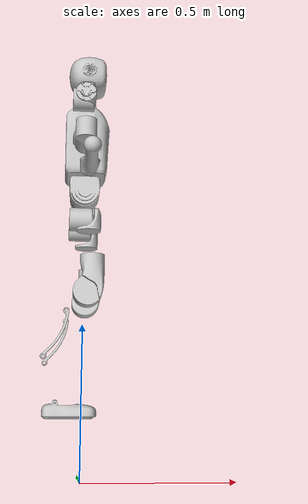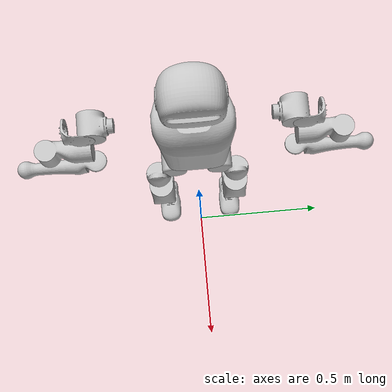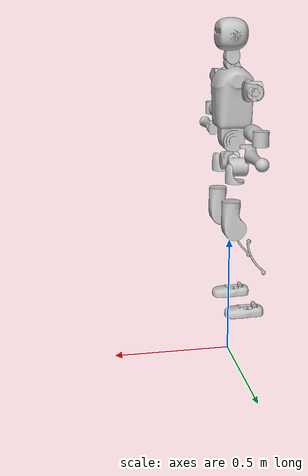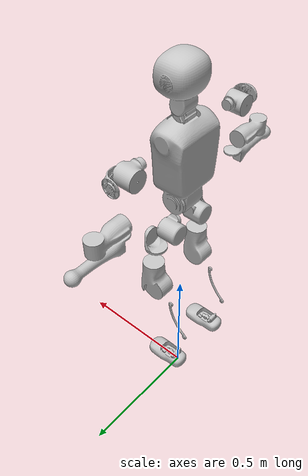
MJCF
<!--Ai generated-->
<mujoco model="k1_mocap">
  <compiler angle="radian" meshdir="meshes"/>

  <default>
    <motor ctrlrange="-1 1" ctrllimited="true"/>
    <joint actuatorfrclimited="true" type="hinge"/>
  </default>

  <asset>
    <mesh name="Trunk" file="Trunk.STL"/>
    <mesh name="Head_1" file="Head_1.STL"/>
    <mesh name="Head_2" file="Head_2.STL"/>
    <mesh name="Left_Arm_1" file="Left_Arm_1.STL"/>
    <mesh name="Left_Arm_2" file="Left_Arm_2.STL"/>
    <mesh name="Left_Arm_3" file="Left_Arm_3.STL"/>
    <mesh name="Left_Arm_4" file="Left_Arm_4.STL"/>
    <mesh name="Right_Arm_1" file="Right_Arm_1.STL"/>
    <mesh name="Right_Arm_2" file="Right_Arm_2.STL"/>
    <mesh name="Right_Arm_3" file="Right_Arm_3.STL"/>
    <mesh name="Right_Arm_4" file="Right_Arm_4.STL"/>
    <mesh name="Left_Hip_Pitch" file="Left_Hip_Pitch.STL"/>
    <mesh name="Left_Hip_Roll" file="Left_Hip_Roll.STL"/>
    <mesh name="Left_Hip_Yaw" file="Left_Hip_Yaw.STL"/>
    <mesh name="Left_Link_Long" file="Left_Link_Long.STL"/>
    <mesh name="Left_Shank" file="Left_Shank.STL"/>
    <mesh name="Left_Ankle_Cross" file="Left_Ankle_Cross.STL"/>
    <mesh name="Left_Foot" file="Left_Foot.STL"/>
    <mesh name="Right_Hip_Pitch" file="Right_Hip_Pitch.STL"/>
    <mesh name="Right_Hip_Roll" file="Right_Hip_Roll.STL"/>
    <mesh name="Right_Hip_Yaw" file="Right_Hip_Yaw.STL"/>
    <mesh name="Right_Link_Long" file="Right_Link_Long.STL"/>
    <mesh name="Right_Shank" file="Right_Shank.STL"/>
    <mesh name="Right_Ankle_Cross" file="Right_Ankle_Cross.STL"/>
    <mesh name="Right_Foot" file="Right_Foot.STL"/>
  </asset>

  <worldbody>
    <body name="Trunk" pos="0 0 1.0">
      <inertial pos="-0.0043392 -0.00065534 0.065686" mass="6.3921" diaginertia="0.096159 0.089512 0.020187"/>
      <freejoint name="Trunk"/>
      <geom type="mesh" contype="0" conaffinity="0" group="1" density="0" rgba="0.75 0.75 0.75 1" mesh="Trunk"/>
      <geom type="mesh" rgba="0.75 0.75 0.75 1" mesh="Trunk"/>
      <site name="imu_in_trunk" size="0.01" pos="0 0 0.1"/>
      <body name="imu_in_torso" pos="0 0 0.1"></body>

      <!-- Head -->
      <body name="Head_1" pos="0.0056 0 0.2149">
        <inertial pos="-0.00069503 -0.00038527 0.031688" mass="0.29729" diaginertia="0.000429 0.000421 0.000126"/>
        <joint name="AAHead_yaw" pos="0 0 0" axis="0 0 1" range="-1.0 1.0" actuatorfrcrange="-10 10"/>
        <geom type="mesh" contype="0" conaffinity="0" group="1" density="0" rgba="0.75 0.75 0.75 1" mesh="Head_1"/>
        <geom type="mesh" rgba="0.75 0.75 0.75 1" mesh="Head_1"/>
        <body name="Head_2" pos="0 0 0.057">
          <inertial pos="-0.00088616 0.00037926 0.019886" mass="0.26395" diaginertia="0.000226 0.000226 0.000113"/>
          <joint name="Head_pitch" pos="0 0 0" axis="0 1 0" range="-0.5 0.5" actuatorfrcrange="-10 10"/>
          <geom type="mesh" contype="0" conaffinity="0" group="1" density="0" rgba="0.75 0.75 0.75 1" mesh="Head_2"/>
          <geom type="mesh" rgba="0.75 0.75 0.75 1" mesh="Head_2"/>
          <body name="head_mocap" pos="0.0 0.0 0.05"></body>
        </body>
      </body>

      <!-- Left Arm -->
      <body name="Left_Arm_1" pos="-0.00815 0.186 0.1806">
        <inertial pos="0.00059693 0.072208 -0.01298" mass="0.84648" diaginertia="0.001538 0.001449 0.000713"/>
        <joint name="ALeft_Shoulder_Pitch" pos="0 0 0" axis="0 1 0" range="-3.14 3.14" actuatorfrcrange="-25 25"/>
        <geom type="mesh" contype="0" conaffinity="0" group="1" density="0" rgba="0.75 0.75 0.75 1" mesh="Left_Arm_1"/>
        <geom type="mesh" rgba="0.75 0.75 0.75 1" mesh="Left_Arm_1"/>
        <body name="Left_Arm_2" pos="0 0.0954 -0.01395">
          <inertial pos="-0.00041651 0.00035459 -0.086718" mass="0.71314" diaginertia="0.002041 0.002027 0.000309"/>
          <joint name="Left_Shoulder_Roll" pos="0 0 0" axis="1 0 0" range="-1.5 1.5" actuatorfrcrange="-25 25"/>
          <geom type="mesh" contype="0" conaffinity="0" group="1" density="0" rgba="0.75 0.75 0.75 1" mesh="Left_Arm_2"/>
          <geom type="mesh" rgba="0.75 0.75 0.75 1" mesh="Left_Arm_2"/>
          <body name="Left_Arm_3" pos="0 0 -0.153">
            <inertial pos="0.01077 0.00295 -0.072009" mass="0.734" diaginertia="0.00106187 0.00103217 0.000400661"/>
            <joint name="Left_Elbow_Pitch" pos="0 0 0" axis="0 1 0" range="-2.5 0.1" actuatorfrcrange="-25 25"/>
            <geom type="mesh" contype="0" conaffinity="0" group="1" density="0" rgba="0.75 0.75 0.75 1" mesh="Left_Arm_3"/>
            <geom type="mesh" rgba="0.75 0.75 0.75 1" mesh="Left_Arm_3"/>
            <body name="Left_Arm_4" pos="0.0158 0 -0.08052">
              <inertial pos="0.064956 0.004454 -0.010062" mass="0.6" diaginertia="0.000443035 0.000421612 0.000259353"/>
              <joint name="Left_Elbow_Yaw" pos="0 0 0" axis="0 0 1" range="-1.5 1.5" actuatorfrcrange="-15 15"/>
              <geom type="mesh" contype="0" conaffinity="0" group="1" density="0" rgba="0.75 0.75 0.75 1" mesh="Left_Arm_4"/>
              <geom type="mesh" rgba="0.75 0.75 0.75 1" mesh="Left_Arm_4"/>
              <body name="left_hand_end" pos="0.1 0.002 -0.01">
                <inertial pos="0.0 0.0 0.0" mass="0.1" diaginertia="0.001 0.001 0.001"/>
              </body>
            </body>
          </body>
        </body>
      </body>

      <!-- Right Arm -->
      <body name="Right_Arm_1" pos="-0.00815 -0.186 0.1806">
        <inertial pos="0.00059693 -0.072208 -0.01298" mass="0.84648" diaginertia="0.001538 0.001449 0.000713"/>
        <joint name="ARight_Shoulder_Pitch" pos="0 0 0" axis="0 1 0" range="-3.14 3.14" actuatorfrcrange="-25 25"/>
        <geom type="mesh" contype="0" conaffinity="0" group="1" density="0" rgba="0.75 0.75 0.75 1" mesh="Right_Arm_1"/>
        <geom type="mesh" rgba="0.75 0.75 0.75 1" mesh="Right_Arm_1"/>
        <body name="Right_Arm_2" pos="0 -0.0954 -0.01395">
          <inertial pos="-0.00041651 -0.00035459 -0.086718" mass="0.71314" diaginertia="0.002041 0.002027 0.000309"/>
          <joint name="Right_Shoulder_Roll" pos="0 0 0" axis="1 0 0" range="-1.5 1.5" actuatorfrcrange="-25 25"/>
          <geom type="mesh" contype="0" conaffinity="0" group="1" density="0" rgba="0.75 0.75 0.75 1" mesh="Right_Arm_2"/>
          <geom type="mesh" rgba="0.75 0.75 0.75 1" mesh="Right_Arm_2"/>
          <body name="Right_Arm_3" pos="0 0 -0.153">
            <inertial pos="0.01077 -0.00295 -0.072009" mass="0.734" diaginertia="0.00106187 0.00103217 0.000400661"/>
            <joint name="Right_Elbow_Pitch" pos="0 0 0" axis="0 1 0" range="-2.5 0.1" actuatorfrcrange="-25 25"/>
            <geom type="mesh" contype="0" conaffinity="0" group="1" density="0" rgba="0.75 0.75 0.75 1" mesh="Right_Arm_3"/>
            <geom type="mesh" rgba="0.75 0.75 0.75 1" mesh="Right_Arm_3"/>
            <body name="Right_Arm_4" pos="0.0158 0 -0.08052">
              <inertial pos="0.064956 -0.004454 -0.010062" mass="0.6" diaginertia="0.000443035 0.000421612 0.000259353"/>
              <joint name="Right_Elbow_Yaw" pos="0 0 0" axis="0 0 1" range="-1.5 1.5" actuatorfrcrange="-15 15"/>
              <geom type="mesh" contype="0" conaffinity="0" group="1" density="0" rgba="0.75 0.75 0.75 1" mesh="Right_Arm_4"/>
              <geom type="mesh" rgba="0.75 0.75 0.75 1" mesh="Right_Arm_4"/>
              <body name="right_hand_end" pos="0.1 -0.002 -0.01">
                <inertial pos="0.0 0.0 0.0" mass="0.1" diaginertia="0.001 0.001 0.001"/>
              </body>
            </body>
          </body>
        </body>
      </body>

      <!-- Left Leg -->
      <body name="Left_Hip_Pitch" pos="0 0.068 -0.14">
        <inertial pos="0.002741 0.047791 -0.02606" mass="1.35" diaginertia="0.001811 0.0014193 0.0012812"/>
        <joint name="Left_Hip_Pitch" pos="0 0 0" axis="0 1 0" range="-1.5 1.5" actuatorfrcrange="-100 100"/>
        <geom type="mesh" contype="0" conaffinity="0" group="1" density="0" rgba="0.75 0.75 0.75 1" mesh="Left_Hip_Pitch"/>
        <geom type="mesh" rgba="0.75 0.75 0.75 1" mesh="Left_Hip_Pitch"/>
        <body name="Left_Hip_Roll" pos="0 0.052 -0.0305">
          <inertial pos="0.029812 -0.001045 -0.087934" mass="1.52" diaginertia="0.0023773 0.0024123 0.0016595"/>
          <joint name="Left_Hip_Roll" pos="0 0 0" axis="1 0 0" range="-0.5 2.9" actuatorfrcrange="-100 100"/>
          <geom type="mesh" contype="0" conaffinity="0" group="1" density="0" rgba="0.75 0.75 0.75 1" mesh="Left_Hip_Roll"/>
          <geom type="mesh" rgba="0.75 0.75 0.75 1" mesh="Left_Hip_Roll"/>
          <body name="Left_Hip_Yaw" pos="0.025 0 -0.124">
            <inertial pos="-0.057709 0.010981 -0.15078" mass="1.702" diaginertia="0.00776166 0.00717575 0.00160139"/>
            <joint name="Left_Hip_Yaw" pos="0 0 0" axis="0 0 1" range="-2.7 2.7" actuatorfrcrange="-100 100"/>
            <geom type="mesh" contype="0" conaffinity="0" group="1" density="0" rgba="0.75 0.75 0.75 1" mesh="Left_Hip_Yaw"/>
            <geom type="mesh" rgba="0.75 0.75 0.75 1" mesh="Left_Hip_Yaw"/>
            <body name="Left_Link_Long" pos="-0.078 -0.002 -0.177">
              <inertial pos="0.005457 -0.003964 -0.12074" mass="1.932" diaginertia="0.011374 0.0112843 0.00146452"/>
              <joint name="Left_Knee_Pitch" pos="0 0 0" axis="0 1 0" range="-0.087 2.88" actuatorfrcrange="-100 100"/>
              <geom type="mesh" contype="0" conaffinity="0" group="1" density="0" rgba="0.75 0.75 0.75 1" mesh="Left_Link_Long"/>
              <geom type="mesh" rgba="0.75 0.75 0.75 1" mesh="Left_Link_Long"/>
              <body name="Left_Ankle_Cross" pos="0 0 -0.3">
                <inertial pos="-0.007269 0 0.011137" mass="0.074" diaginertia="1.89e-05 1.40805e-05 6.9195e-06"/>
                <joint name="Left_Ankle_Pitch" pos="0 0 0" axis="0 1 0" range="-0.87 0.52" actuatorfrcrange="-50 50"/>
                <geom type="mesh" contype="0" conaffinity="0" group="1" density="0" rgba="0.75 0.75 0.75 1" mesh="Left_Ankle_Cross"/>
                <geom type="mesh" rgba="0.75 0.75 0.75 1" mesh="Left_Ankle_Cross"/>
                <body name="left_foot_link" pos="0 0 0">
                  <inertial pos="0.026505 0 -0.016425" mass="0.608" diaginertia="0.00167218 0.0016161 0.000217621"/>
                  <joint name="Left_Ankle_Roll" pos="0 0 0" axis="1 0 0" range="-0.345 0.345" actuatorfrcrange="-50 50"/>
                  <geom type="mesh" contype="0" conaffinity="0" group="1" density="0" rgba="0.75 0.75 0.75 1" mesh="Left_Foot"/>
                  <geom type="mesh" rgba="0.75 0.75 0.75 1" mesh="Left_Foot"/>
                </body>
              </body>
            </body>
          </body>
        </body>
      </body>

      <!-- Right Leg -->
      <body name="Right_Hip_Pitch" pos="0 -0.068 -0.14">
        <inertial pos="0.002741 -0.047791 -0.02606" mass="1.35" diaginertia="0.001811 0.0014193 0.0012812"/>
        <joint name="Right_Hip_Pitch" pos="0 0 0" axis="0 1 0" range="-1.5 1.5" actuatorfrcrange="-100 100"/>
        <geom type="mesh" contype="0" conaffinity="0" group="1" density="0" rgba="0.75 0.75 0.75 1" mesh="Right_Hip_Pitch"/>
        <geom type="mesh" rgba="0.75 0.75 0.75 1" mesh="Right_Hip_Pitch"/>
        <body name="Right_Hip_Roll" pos="0 -0.052 -0.0305">
          <inertial pos="0.029812 0.001045 -0.087934" mass="1.52" diaginertia="0.0023773 0.0024123 0.0016595"/>
          <joint name="Right_Hip_Roll" pos="0 0 0" axis="1 0 0" range="-2.9 0.5" actuatorfrcrange="-100 100"/>
          <geom type="mesh" contype="0" conaffinity="0" group="1" density="0" rgba="0.75 0.75 0.75 1" mesh="Right_Hip_Roll"/>
          <geom type="mesh" rgba="0.75 0.75 0.75 1" mesh="Right_Hip_Roll"/>
          <body name="Right_Hip_Yaw" pos="0.025 0 -0.124">
            <inertial pos="-0.057709 -0.010981 -0.15078" mass="1.702" diaginertia="0.00776166 0.00717575 0.00160139"/>
            <joint name="Right_Hip_Yaw" pos="0 0 0" axis="0 0 1" range="-2.7 2.7" actuatorfrcrange="-100 100"/>
            <geom type="mesh" contype="0" conaffinity="0" group="1" density="0" rgba="0.75 0.75 0.75 1" mesh="Right_Hip_Yaw"/>
            <geom type="mesh" rgba="0.75 0.75 0.75 1" mesh="Right_Hip_Yaw"/>
            <body name="Right_Link_Long" pos="-0.078 0.002 -0.177">
              <inertial pos="0.005457 0.003964 -0.12074" mass="1.932" diaginertia="0.011374 0.0112843 0.00146452"/>
              <joint name="Right_Knee_Pitch" pos="0 0 0" axis="0 1 0" range="-0.087 2.88" actuatorfrcrange="-100 100"/>
              <geom type="mesh" contype="0" conaffinity="0" group="1" density="0" rgba="0.75 0.75 0.75 1" mesh="Right_Link_Long"/>
              <geom type="mesh" rgba="0.75 0.75 0.75 1" mesh="Right_Link_Long"/>
              <body name="Right_Ankle_Cross" pos="0 0 -0.3">
                <inertial pos="-0.007269 0 0.011137" mass="0.074" diaginertia="1.89e-05 1.40805e-05 6.9195e-06"/>
                <joint name="Right_Ankle_Pitch" pos="0 0 0" axis="0 1 0" range="-0.87 0.52" actuatorfrcrange="-50 50"/>
                <geom type="mesh" contype="0" conaffinity="0" group="1" density="0" rgba="0.75 0.75 0.75 1" mesh="Right_Ankle_Cross"/>
                <geom type="mesh" rgba="0.75 0.75 0.75 1" mesh="Right_Ankle_Cross"/>
                <body name="right_foot_link" pos="0 0 0">
                  <inertial pos="0.026505 0 -0.016425" mass="0.608" diaginertia="0.00167218 0.0016161 0.000217621"/>
                  <joint name="Right_Ankle_Roll" pos="0 0 0" axis="1 0 0" range="-0.345 0.345" actuatorfrcrange="-50 50"/>
                  <geom type="mesh" contype="0" conaffinity="0" group="1" density="0" rgba="0.75 0.75 0.75 1" mesh="Right_Foot"/>
                  <geom type="mesh" rgba="0.75 0.75 0.75 1" mesh="Right_Foot"/>
                </body>
              </body>
            </body>
          </body>
        </body>
      </body>
    </body>
  </worldbody>

  <actuator>
    <motor name="AAHead_yaw" joint="AAHead_yaw"/>
    <motor name="Head_pitch" joint="Head_pitch"/>
    <motor name="ALeft_Shoulder_Pitch" joint="ALeft_Shoulder_Pitch"/>
    <motor name="Left_Shoulder_Roll" joint="Left_Shoulder_Roll"/>
    <motor name="Left_Elbow_Pitch" joint="Left_Elbow_Pitch"/>
    <motor name="Left_Elbow_Yaw" joint="Left_Elbow_Yaw"/>
    <motor name="ARight_Shoulder_Pitch" joint="ARight_Shoulder_Pitch"/>
    <motor name="Right_Shoulder_Roll" joint="Right_Shoulder_Roll"/>
    <motor name="Right_Elbow_Pitch" joint="Right_Elbow_Pitch"/>
    <motor name="Right_Elbow_Yaw" joint="Right_Elbow_Yaw"/>
    <motor name="Left_Hip_Pitch" joint="Left_Hip_Pitch"/>
    <motor name="Left_Hip_Roll" joint="Left_Hip_Roll"/>
    <motor name="Left_Hip_Yaw" joint="Left_Hip_Yaw"/>
    <motor name="Left_Knee_Pitch" joint="Left_Knee_Pitch"/>
    <motor name="Left_Ankle_Pitch" joint="Left_Ankle_Pitch"/>
    <motor name="Left_Ankle_Roll" joint="Left_Ankle_Roll"/>
    <motor name="Right_Hip_Pitch" joint="Right_Hip_Pitch"/>
    <motor name="Right_Hip_Roll" joint="Right_Hip_Roll"/>
    <motor name="Right_Hip_Yaw" joint="Right_Hip_Yaw"/>
    <motor name="Right_Knee_Pitch" joint="Right_Knee_Pitch"/>
    <motor name="Right_Ankle_Pitch" joint="Right_Ankle_Pitch"/>
    <motor name="Right_Ankle_Roll" joint="Right_Ankle_Roll"/>
  </actuator>

  <sensor>
    <gyro name="imu-trunk-angular-velocity" site="imu_in_trunk" noise="5e-4" cutoff="34.9"/>
    <accelerometer name="imu-trunk-linear-acceleration" site="imu_in_trunk" noise="1e-2" cutoff="157"/>
  </sensor>
</mujoco>
